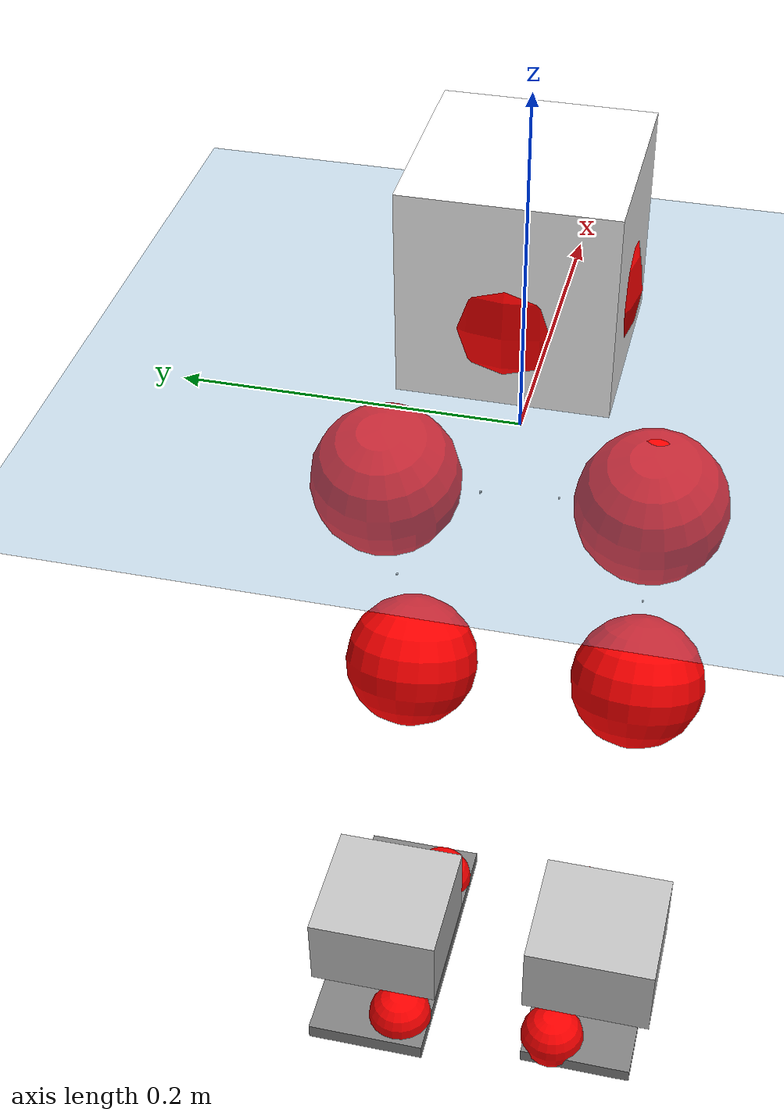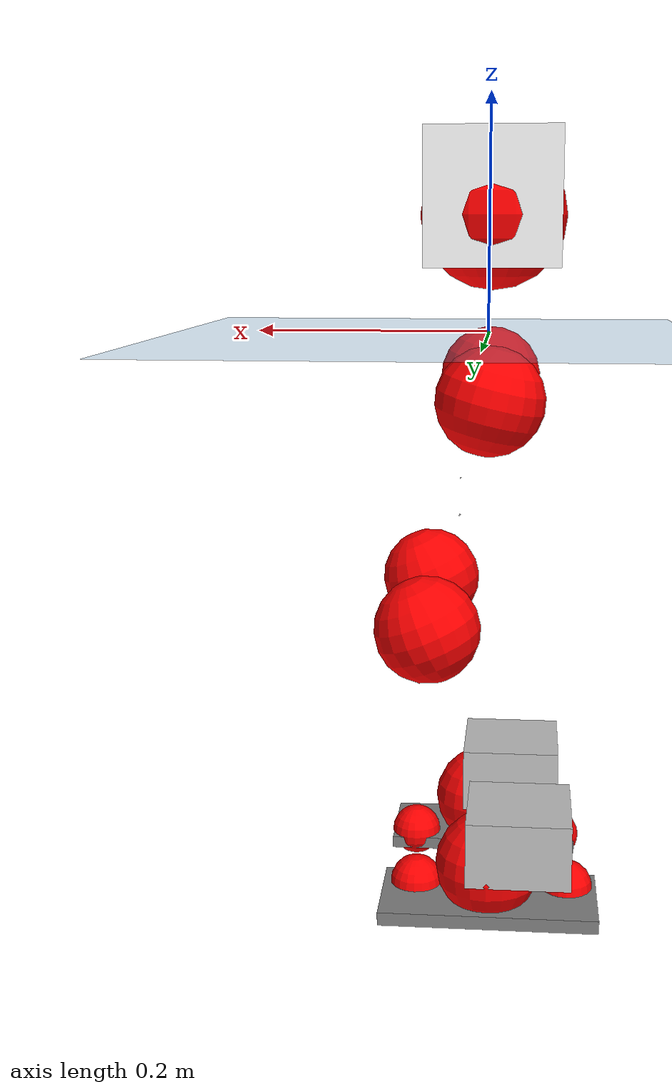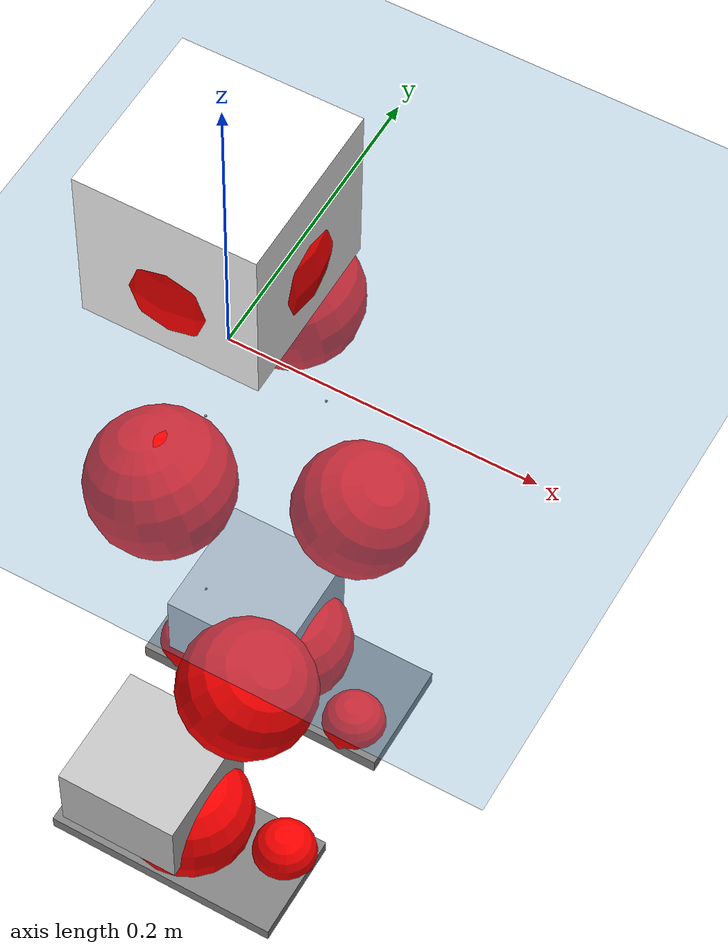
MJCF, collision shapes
<mujoco model="pi_12dof_release_v1">
  <compiler angle="radian" assetdir="assets" balanceinertia="true" inertiafromgeom="false"/>

  <option timestep="0.005" density="1.2" viscosity="2e-05"/>

  <size nkey="1"/>

  <visual>
    <quality shadowsize="8192"/>
    <map shadowclip="0.5"/>
  </visual>

  <default>
    <default class="/">
      <joint armature="0.01" damping="0.01" frictionloss="0.01"/>
      <geom contype="0" conaffinity="0" group="1" solref="-1000 -80"/>
      <site size="0.01 0.005 0.005" group="5"/>
      <general forcelimited="true" biastype="affine" gainprm="20" biasprm="0 -20 -0.5"/>
      <default class="foot">
        <geom size="0.0845 0.036 0.005" type="box" condim="6" group="4" priority="1" friction="0.9 0.2 0.2" solimp="0.015 1 0.005"/>
      </default>
      <default class="reward_collision_sphere">
        <geom group="5" rgba="1 0 0 1"/>
      </default>
    </default>
  </default>

  <asset>
    <texture type="skybox" colorspace="auto" name="//unnamed_texture_0" builtin="gradient" rgb1="0.95 0.95 0.95" rgb2="0.95 0.95 0.95" width="100" height="600"/>
    <texture type="2d" colorspace="auto" name="texplane" builtin="checker" rgb1="0.345 0.575 0.748" rgb2="0.345 0.575 0.748" markrgb="1 1 1" width="512" height="512"/>
    <material name="MatPlane" class="/" texture="texplane" texuniform="true" texrepeat="2 2" specular="0.9"/>
    <mesh name="baselink_1" class="/" file="baselink_1.STL"/>
    <mesh name="r_hip_pitch_link" class="/" file="r_hip_pitch_link.STL"/>
    <mesh name="r_hip_roll_link" class="/" file="r_hip_roll_link.STL"/>
    <mesh name="r_thigh_link" class="/" file="r_thigh_link.STL"/>
    <mesh name="r_calf_link" class="/" file="r_calf_link.STL"/>
    <mesh name="r_ankle_pitch_link" class="/" file="r_ankle_pitch_link.STL"/>
    <mesh name="r_ankle_roll_link" class="/" file="r_ankle_roll_link.STL"/>
    <mesh name="l_hip_pitch_link" class="/" file="l_hip_pitch_link.STL"/>
    <mesh name="l_hip_roll_link" class="/" file="l_hip_roll_link.STL"/>
    <mesh name="l_thigh_link" class="/" file="l_thigh_link.STL"/>
    <mesh name="l_calf_link" class="/" file="l_calf_link.STL"/>
    <mesh name="l_ankle_pitch_link" class="/" file="l_ankle_pitch_link.STL"/>
    <mesh name="l_ankle_roll_link" class="/" file="l_ankle_roll_link.STL"/>
  </asset>

  <worldbody>
    <geom name="floor" class="/" size="100 100 0.125" type="plane" group="0" material="MatPlane"/>
    <light name="toplight_shadow" class="/" pos="0 0 5" dir="0.0990148 0.0990148 -0.990148" type="directional" ambient="0.04 0.04 0.04" diffuse="0.55 0.55 0.55" specular="0.12 0.12 0.12"/>
    <light name="toplight_fill" class="/" pos="0 0 5" dir="0.0990148 0.0990148 -0.990148" type="directional" castshadow="false" ambient="0.04 0.04 0.04" diffuse="0.3 0.3 0.3" specular="0.08 0.08 0.08"/>
    <body name="trunk" pos="-0.00309075 -0.000207477 -0.00226089" quat="1 5.90497e-05 0.000769922 0.000520144">
      <inertial pos="0.00484482 0.00204721 0.0565661" quat="0.692207 0.00780214 0.0185796 0.721417" mass="3.40446" diaginertia="0.00907693 0.00887017 0.0272543"/>
      <joint name="//unnamed_joint_0" type="free"/>
      <geom name="//unnamed_geom_1" class="/" type="mesh" density="0" rgba="1 1 1 1" mesh="baselink_1"/>
      <geom name="//unnamed_geom_2" class="/" size="0.056802 0.056802 0.056802" pos="0 0 0.115044" type="box" rgba="1 1 1 1"/>
      <geom name="//unnamed_geom_3" class="reward_collision_sphere" size="0.0624822" pos="0 0 0.100663"/>
      <site name="imu" class="/" pos="-0.00234441 0.00925813 -0.00748938" size="0.0113604"/>
      <camera name="track" class="/" pos="0 -1.98099 0" quat="0.707107 0.707107 0 0" mode="trackcom"/>
      <camera name="ego_camera" class="/" pos="0.0734688 0 0.258848" quat="-0.5 -0.5 0.5 0.5"/>
      <body name="r_hip_pitch_link" pos="0.0014789 -0.0247596 -0.0451429" quat="0.992295 -0.000366687 -0.123893 -0.000790806">
        <inertial pos="0.00354057 -0.0554063 -0.000918428" quat="-0.0199504 0.708767 -0.0274852 0.704625" mass="0.542716" diaginertia="9.68066e-05 9.86747e-05 0.00051133"/>
        <joint name="r_hip_pitch_joint" class="/" pos="0 0 0" axis="0.00709645 -0.999939 -0.00844614" range="-1.79198 1.28004" armature="0.00984388" damping="0.00861491" frictionloss="0.0115723"/>
        <geom name="//unnamed_geom_4" class="/" type="mesh" density="0" rgba="0.75294 0.75294 0.75294 1" mesh="r_hip_pitch_link"/>
        <geom name="//unnamed_geom_5" class="/" size="0.00056802 0.00056802 0.00056802" type="box" rgba="0.75294 0.75294 0.75294 1"/>
        <body name="r_hip_roll_link" pos="0.00234517 -0.0539072 0.00122508" quat="1 2.34158e-05 -0.000337079 -5.60803e-05">
          <inertial pos="-0.000995919 -0.000918154 -0.085783" quat="0.705816 -0.0800558 -0.0828514 0.698964" mass="0.566582" diaginertia="0.000307819 0.000264588 0.000751443"/>
          <joint name="r_hip_roll_joint" class="/" pos="0 0 0" axis="-0.999999 0.00145258 0.000354433" range="-0.170187 0.486012" armature="0.00995381" damping="0.018921" frictionloss="0.0110462"/>
          <geom name="//unnamed_geom_6" class="/" type="mesh" density="0" rgba="0.75294 0.75294 0.75294 1" mesh="r_hip_roll_link"/>
          <geom name="//unnamed_geom_7" class="/" size="0.00056802 0.00056802 0.00056802" type="box" rgba="0.75294 0.75294 0.75294 1"/>
          <geom name="//unnamed_geom_8" class="reward_collision_sphere" size="0.0454416"/>
          <body name="r_thigh_link" pos="0.00249678 0.001823 -0.100283" quat="1 -0.000224738 -0.000274193 -0.000553478">
            <inertial pos="0.00047107 0.00210591 -0.0673874" quat="0.731597 0.681665 0.00857336 0.00499806" mass="0.164556" diaginertia="0.000105821 8.76956e-05 0.000352485"/>
            <joint name="r_thigh_joint" class="/" pos="0 0 0" axis="-0.000316676 -9.47197e-05 -1" range="-0.298993 0.6244" armature="0.0105122" damping="0.0160143" frictionloss="0.0131568"/>
            <geom name="//unnamed_geom_9" class="/" type="mesh" density="0" rgba="0.75294 0.75294 0.75294 1" mesh="r_thigh_link"/>
            <geom name="//unnamed_geom_10" class="/" size="0.00056802 0.00056802 0.00056802" type="box" rgba="0.75294 0.75294 0.75294 1"/>
            <body name="r_calf_link" pos="0.00274135 0.00028167 -0.0992625" quat="0.94765 -9.09215e-06 0.31931 -1.22832e-05">
              <inertial pos="0.00156899 3.97926e-05 -0.0991033" quat="0.999971 -0.00249853 0.00192562 0.00693013" mass="1.20161" diaginertia="0.00309618 0.00325535 0.00103482"/>
              <joint name="r_calf_joint" class="/" pos="0 0 0" axis="0.000396681 -0.999997 0.00245346" stiffness="0.00573201" range="-1.7032 0.628025" armature="0.0102822" damping="0.0198417" frictionloss="0.0114674"/>
              <geom name="//unnamed_geom_11" class="/" type="mesh" density="0" rgba="0.75294 0.75294 0.75294 1" mesh="r_calf_link"/>
              <geom name="//unnamed_geom_12" class="/" size="0.00056802 0.00056802 0.00056802" type="box" rgba="0.75294 0.75294 0.75294 1"/>
              <geom name="//unnamed_geom_13" class="reward_collision_sphere" size="0.0454416"/>
              <body name="r_ankle_pitch_link" pos="0.000597647 0.00267381 -0.201797" quat="0.9801 0.000141201 -0.198503 -8.64138e-05">
                <inertial pos="0.00641041 0.00333291 -0.00100635" quat="0.00687137 0.705027 -0.0030282 0.709141" mass="0.255027" diaginertia="0.000267715 0.000198721 0.000711514"/>
                <joint name="r_ankle_pitch_joint" class="/" pos="0 0 0" axis="0.00206032 -0.999947 -0.0100828" range="-1.2504 0.501732" armature="0.0114387" damping="0.00253874" frictionloss="0.0123304"/>
                <geom name="//unnamed_geom_14" class="/" type="mesh" density="0" rgba="0.75294 0.75294 0.75294 1" mesh="r_ankle_pitch_link"/>
                <geom name="//unnamed_geom_15" class="/" size="0.0443056 0.0454416 0.028401" type="box" rgba="0.75294 0.75294 0.75294 1"/>
                <body name="r_ankle_roll_link" pos="0.0753582 0.00263163 -0.00279996" quat="1 -0.000252545 -0.000316856 3.17032e-05">
                  <inertial pos="-0.0222134 0.000308461 -0.0215423" quat="0.560263 0.43216 0.438496 0.554134" mass="0.765971" diaginertia="0.00101736 0.000982916 0.00173488"/>
                  <joint name="r_ankle_roll_joint" class="/" pos="0 0 0" axis="-0.999922 0.0114384 -0.00493636" stiffness="0.00370458" range="-0.115458 0.153958" armature="0.0104235" damping="0" frictionloss="0.0118202"/>
                  <geom name="//unnamed_geom_16" class="/" type="mesh" density="0" rgba="0.75294 0.75294 0.75294 1" mesh="r_ankle_roll_link"/>
                  <geom name="//unnamed_geom_17" class="/" type="mesh" rgba="0.75294 0.75294 0.75294 1" mesh="r_ankle_roll_link"/>
                  <geom name="right_foot" class="foot" size="0.0859093 0.0392166 0.00523845" pos="-0.0499588 0 -0.063274"/>
                  <geom name="//unnamed_geom_19" class="reward_collision_sphere" size="0.0454416" pos="-0.0489792 0 -0.0287609"/>
                  <geom name="//unnamed_geom_20" class="reward_collision_sphere" size="0.0227208" pos="0.0146938 0.0198099 -0.0575218"/>
                  <geom name="//unnamed_geom_21" class="reward_collision_sphere" size="0.0227208" pos="-0.11755 0.0198099 -0.0575218"/>
                  <site name="right_foot" class="foot" pos="-0.0499588 0 -0.063274" size="0.0113604"/>
                </body>
              </body>
            </body>
          </body>
        </body>
      </body>
      <body name="l_hip_pitch_link" pos="-0.000904529 0.0215824 -0.0473055" quat="0.992184 5.73358e-05 -0.124787 -0.000395032">
        <inertial pos="0.0034603 0.0514678 -0.000729007" quat="-0.0346496 0.701164 0.0450489 0.710732" mass="0.572569" diaginertia="0.000120024 0.000104125 0.000624745"/>
        <joint name="l_hip_pitch_joint" class="/" pos="0 0 0" axis="-0.00122409 0.999901 0.0139975" range="-1.19219 1.75414" armature="0.0116289" damping="0.0235964" frictionloss="0.0113899"/>
        <geom name="//unnamed_geom_22" class="/" type="mesh" density="0" rgba="0.75294 0.75294 0.75294 1" mesh="l_hip_pitch_link"/>
        <geom name="//unnamed_geom_23" class="/" size="0.00056802 0.00056802 0.00056802" type="box" rgba="0.75294 0.75294 0.75294 1"/>
        <body name="l_hip_roll_link" pos="0.000246617 0.0570591 -0.0010032" quat="1 3.11368e-06 0.000580383 0.000116987">
          <inertial pos="-0.00150505 -0.00055526 -0.0856235" quat="0.691502 -0.0760695 -0.0866485 0.713114" mass="0.57095" diaginertia="0.000308905 0.000279748 0.000827322"/>
          <joint name="l_hip_roll_joint" class="/" pos="0 0 0" axis="-0.999883 -0.0152645 -0.000324223" stiffness="0.0200492" range="-0.527369 0.11447" armature="0.00992608" damping="0.00911556" frictionloss="0.00984014"/>
          <geom name="//unnamed_geom_24" class="/" type="mesh" density="0" rgba="0.75294 0.75294 0.75294 1" mesh="l_hip_roll_link"/>
          <geom name="//unnamed_geom_25" class="/" size="0.00056802 0.00056802 0.00056802" type="box" rgba="0.75294 0.75294 0.75294 1"/>
          <geom name="//unnamed_geom_26" class="reward_collision_sphere" size="0.0454416"/>
          <body name="l_thigh_link" pos="8.70874e-05 0.000859817 -0.0972094" quat="0.999999 -0.000702659 0.000221579 -0.00087479">
            <inertial pos="-0.00232147 -0.00400548 -0.0684865" quat="0.673906 0.738755 0.00867492 -0.00411423" mass="0.170594" diaginertia="0.000113822 9.3169e-05 0.000381274"/>
            <joint name="l_thigh_joint" class="/" pos="0 0 0" axis="0.013133 0.00542722 -0.999899" stiffness="0.00506201" range="-0.607634 0.312888" armature="0.0124112" damping="0.0103056" frictionloss="0.0124868"/>
            <geom name="//unnamed_geom_27" class="/" type="mesh" density="0" rgba="0.75294 0.75294 0.75294 1" mesh="l_thigh_link"/>
            <geom name="//unnamed_geom_28" class="/" size="0.00056802 0.00056802 0.00056802" type="box" rgba="0.75294 0.75294 0.75294 1"/>
            <body name="l_calf_link" pos="0.00178534 -0.00198525 -0.103186" quat="0.947855 -0.00072416 0.3187 0.000577327">
              <inertial pos="-0.00218868 0.00385479 -0.0977341" quat="0.999966 0.00437328 0.00293529 0.00638527" mass="1.19749" diaginertia="0.00321356 0.00336349 0.00106613"/>
              <joint name="l_calf_joint" class="/" pos="0 0 0" axis="0.000831305 0.999967 0.00802435" range="-0.679281 1.62029" armature="0.0127768" damping="0.00654645" frictionloss="0.0117836"/>
              <geom name="//unnamed_geom_29" class="/" type="mesh" density="0" rgba="0.75294 0.75294 0.75294 1" mesh="l_calf_link"/>
              <geom name="//unnamed_geom_30" class="/" size="0.00056802 0.00056802 0.00056802" type="box" rgba="0.75294 0.75294 0.75294 1"/>
              <geom name="//unnamed_geom_31" class="reward_collision_sphere" size="0.0454416"/>
              <body name="l_ankle_pitch_link" pos="-0.00225342 0.00123662 -0.198482" quat="0.980072 -0.00011552 -0.198641 3.57554e-05">
                <inertial pos="0.00315959 -0.00133666 -0.00048189" quat="-0.0044842 0.709687 0.00081237 0.704503" mass="0.259988" diaginertia="0.000270389 0.000213851 0.000732841"/>
                <joint name="l_ankle_pitch_joint" class="/" pos="0 0 0" axis="-0.00438782 0.999989 0.00178219" range="-0.50803 1.32144" armature="0.0111412" damping="0" frictionloss="0.0127268"/>
                <geom name="//unnamed_geom_32" class="/" type="mesh" density="0" rgba="0.75294 0.75294 0.75294 1" mesh="l_ankle_pitch_link"/>
                <geom name="//unnamed_geom_33" class="/" size="0.0443056 0.0454416 0.028401" type="box" rgba="0.75294 0.75294 0.75294 1"/>
                <body name="l_ankle_roll_link" pos="0.0752536 0.000454145 0.00203491" quat="1 -5.25215e-05 0.000268982 -7.21261e-05">
                  <inertial pos="-0.024016 0.000184587 -0.0199665" quat="0.552743 0.432476 0.434131 0.564775" mass="0.757623" diaginertia="0.00105347 0.000972612 0.00173194"/>
                  <joint name="l_ankle_roll_joint" class="/" pos="0 0 0" axis="-0.999934 0.01144 0.00112286" stiffness="0.0057147" range="-0.153907 0.200902" armature="0.00980195" damping="0.00967652" frictionloss="0.00990903"/>
                  <geom name="//unnamed_geom_34" class="/" type="mesh" density="0" rgba="0.75294 0.75294 0.75294 1" mesh="l_ankle_roll_link"/>
                  <geom name="//unnamed_geom_35" class="/" type="mesh" rgba="0.75294 0.75294 0.75294 1" mesh="l_ankle_roll_link"/>
                  <geom name="left_foot" class="foot" size="0.0934116 0.0416432 0.00582001" pos="-0.0499588 0 -0.063274"/>
                  <geom name="//unnamed_geom_37" class="reward_collision_sphere" size="0.0454416" pos="-0.0489792 0 -0.0287609"/>
                  <geom name="//unnamed_geom_38" class="reward_collision_sphere" size="0.0227208" pos="0.0146938 -0.0198099 -0.0575218"/>
                  <geom name="//unnamed_geom_39" class="reward_collision_sphere" size="0.0227208" pos="-0.11755 -0.0198099 -0.0575218"/>
                  <site name="left_foot" class="foot" pos="-0.0499588 0 -0.063274" size="0.0113604"/>
                </body>
              </body>
            </body>
          </body>
        </body>
      </body>
    </body>
  </worldbody>

  <contact>
    <pair class="/" geom1="floor" geom2="right_foot" name="//unnamed_contact_1"/>
    <pair class="/" geom1="floor" geom2="left_foot" name="//unnamed_contact_0"/>
  </contact>

  <actuator>
    <general name="r_hip_pitch_joint" class="/" joint="r_hip_pitch_joint" forcerange="-24.7387 24.7387" gainprm="22.4221" biasprm="0 -22.4221 -0.606873"/>
    <general name="r_hip_roll_joint" class="/" joint="r_hip_roll_joint" forcerange="-25.2013 25.2013" gainprm="22.4221" biasprm="0 -22.4221 -0.606873"/>
    <general name="r_thigh_joint" class="/" joint="r_thigh_joint" forcerange="-22.376 22.376" gainprm="22.4221" biasprm="0 -22.4221 -0.606873"/>
    <general name="r_calf_joint" class="/" joint="r_calf_joint" forcerange="-21.3153 21.3153" gainprm="22.4221" biasprm="0 -22.4221 -0.606873"/>
    <general name="r_ankle_pitch_joint" class="/" joint="r_ankle_pitch_joint" forcerange="-25.7349 25.7349" gainprm="22.4221" biasprm="0 -22.4221 -0.606873"/>
    <general name="r_ankle_roll_joint" class="/" joint="r_ankle_roll_joint" forcerange="-25.2119 25.2119" gainprm="22.4221" biasprm="0 -22.4221 -0.606873"/>
    <general name="l_hip_pitch_joint" class="/" joint="l_hip_pitch_joint" forcerange="-23.6137 23.6137" gainprm="22.4221" biasprm="0 -22.4221 -0.606873"/>
    <general name="l_hip_roll_joint" class="/" joint="l_hip_roll_joint" forcerange="-22.1647 22.1647" gainprm="22.4221" biasprm="0 -22.4221 -0.606873"/>
    <general name="l_thigh_joint" class="/" joint="l_thigh_joint" forcerange="-22.7177 22.7177" gainprm="22.4221" biasprm="0 -22.4221 -0.606873"/>
    <general name="l_calf_joint" class="/" joint="l_calf_joint" forcerange="-24.3122 24.3122" gainprm="22.4221" biasprm="0 -22.4221 -0.606873"/>
    <general name="l_ankle_pitch_joint" class="/" joint="l_ankle_pitch_joint" forcerange="-25.6147 25.6147" gainprm="22.4221" biasprm="0 -22.4221 -0.606873"/>
    <general name="l_ankle_roll_joint" class="/" joint="l_ankle_roll_joint" forcerange="-24.7396 24.7396" gainprm="22.4221" biasprm="0 -22.4221 -0.606873"/>
  </actuator>

  <sensor>
    <gyro site="imu" name="imu_angular_velocity"/>
    <velocimeter site="imu" name="imu_linear_velocity"/>
    <framelinvel objtype="site" objname="left_foot" name="left_foot_global_linear_velocity"/>
    <framelinvel objtype="site" objname="right_foot" name="right_foot_global_linear_velocity"/>
  </sensor>

  <keyframe>
    <key name="home" qpos="0 0 0.291 1 0 0 0 0.4 0 0 -0.8 0.4 0 -0.4 0 0 0.8 -0.4 0"/>
  </keyframe>
</mujoco>
